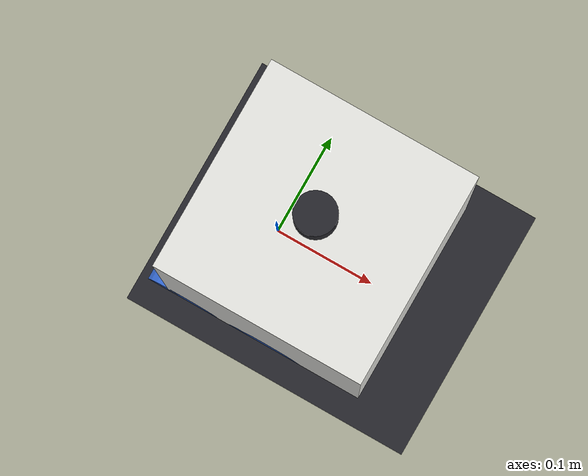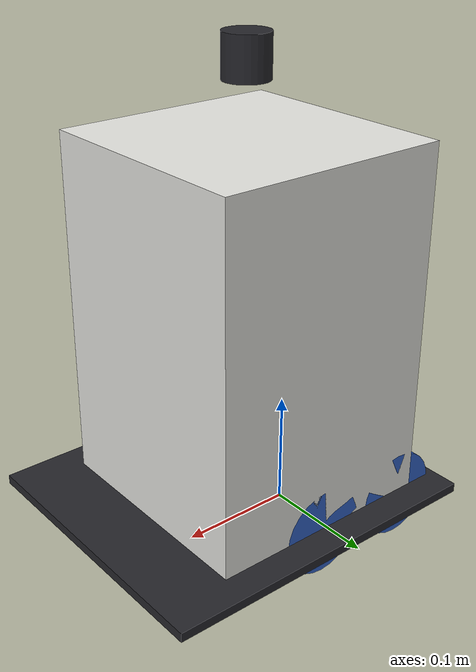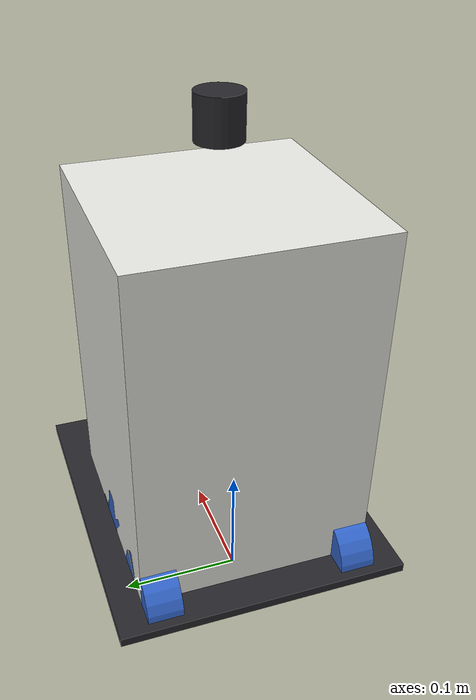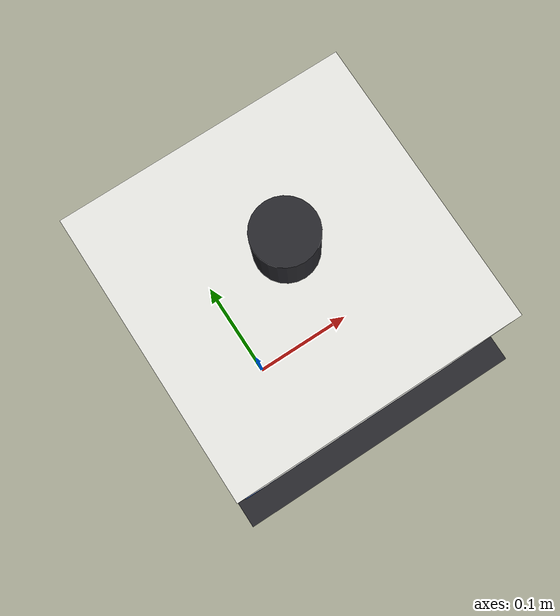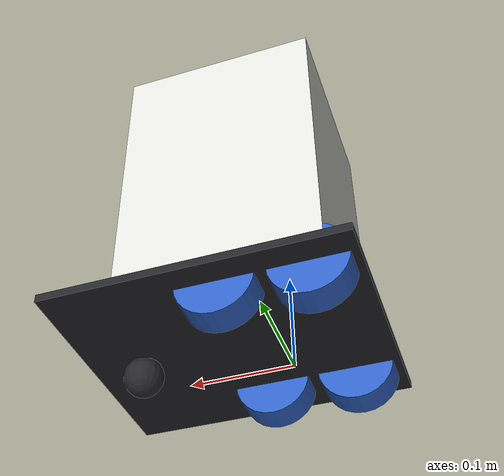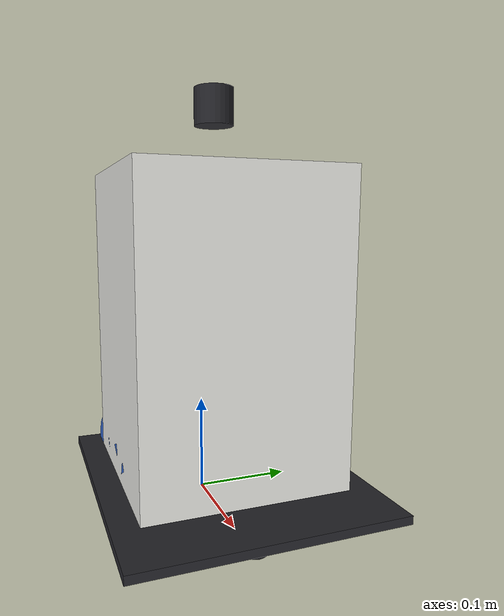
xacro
<?xml version="1.0"?>
<robot xmlns:xacro="http://www.ros.org/wiki/xacro" name="omnibot">

  <!-- ===================================================== vermessene Masse -->
  <xacro:property name="wheel_radius" value="0.0375"/>
  <xacro:property name="wheel_width"  value="0.030"/>
  <xacro:property name="track"        value="0.170"/>   <!-- Radmitte zu Radmitte -->
  <xacro:property name="wheelbase"    value="0.085"/>   <!-- Vorder- zu Hinterachse -->

  <xacro:property name="plate_length" value="0.290"/>
  <xacro:property name="plate_width"  value="0.250"/>
  <xacro:property name="plate_thick"  value="0.008"/>

  <!-- Kanten der Grundplatte relativ zu base_link -->
  <xacro:property name="plate_front"  value="0.2025"/>
  <xacro:property name="plate_rear"   value="-0.0875"/>
  <xacro:property name="plate_x"      value="${(plate_front + plate_rear) / 2}"/>

  <!-- LIDAR: Scanebene 0,40 m ueber dem Boden, direkt ueber der Vorderachse -->
  <xacro:property name="laser_x"      value="0.0425"/>
  <xacro:property name="laser_z"      value="${0.40 - wheel_radius}"/>

  <!-- ============================================== geschaetzt, nicht gemessen -->
  <!-- Die Schwenkrolle sitzt vorn auf der Mittellinie. Ihre Laengsposition ist
       nie vermessen worden; sie hat keinen Einfluss auf Kinematik oder Costmap
       und dient hier nur der Anschauung. -->
  <xacro:property name="caster_x"     value="0.150"/>
  <xacro:property name="caster_radius" value="0.020"/>
  <!-- Aufbau (Rumpf, Kopfkuppel) grob, nur zur Orientierung in RViz2. -->
  <xacro:property name="body_height"  value="0.30"/>

  <material name="omnibot_white"><color rgba="0.90 0.90 0.88 1.0"/></material>
  <material name="omnibot_dark"> <color rgba="0.15 0.15 0.17 1.0"/></material>
  <material name="omnibot_blue"> <color rgba="0.20 0.40 0.80 1.0"/></material>

  <xacro:macro name="dummy_inertial" params="mass">
    <inertial>
      <mass value="${mass}"/>
      <inertia ixx="0.001" ixy="0.0" ixz="0.0" iyy="0.001" iyz="0.0" izz="0.001"/>
    </inertial>
  </xacro:macro>

  <!-- ============================================================== Rahmen -->

  <link name="base_footprint"/>

  <joint name="base_footprint_joint" type="fixed">
    <parent link="base_footprint"/>
    <child link="base_link"/>
    <origin xyz="0 0 ${wheel_radius}" rpy="0 0 0"/>
  </joint>

  <link name="base_link">
    <visual>
      <origin xyz="${plate_x} 0 0" rpy="0 0 0"/>
      <geometry><box size="${plate_length} ${plate_width} ${plate_thick}"/></geometry>
      <material name="omnibot_dark"/>
    </visual>
    <collision>
      <origin xyz="${plate_x} 0 0" rpy="0 0 0"/>
      <geometry><box size="${plate_length} ${plate_width} ${plate_thick}"/></geometry>
    </collision>
    <xacro:dummy_inertial mass="2.0"/>
  </link>

  <!-- Aufbau: grob, damit man in RViz2 sieht, wo vorne ist -->
  <link name="body_link">
    <visual>
      <origin xyz="0 0 ${body_height / 2}" rpy="0 0 0"/>
      <geometry><box size="0.20 0.20 ${body_height}"/></geometry>
      <material name="omnibot_white"/>
    </visual>
  </link>
  <joint name="body_joint" type="fixed">
    <parent link="base_link"/>
    <child link="body_link"/>
    <origin xyz="${laser_x} 0 ${plate_thick / 2}" rpy="0 0 0"/>
  </joint>

  <!-- =============================================================== Raeder -->
  <xacro:macro name="wheel" params="name x y">
    <link name="${name}">
      <visual>
        <origin xyz="0 0 0" rpy="${pi/2} 0 0"/>
        <geometry><cylinder radius="${wheel_radius}" length="${wheel_width}"/></geometry>
        <material name="omnibot_blue"/>
      </visual>
      <collision>
        <origin xyz="0 0 0" rpy="${pi/2} 0 0"/>
        <geometry><cylinder radius="${wheel_radius}" length="${wheel_width}"/></geometry>
      </collision>
      <xacro:dummy_inertial mass="0.2"/>
    </link>
    <joint name="${name}_joint" type="fixed">
      <parent link="base_link"/>
      <child link="${name}"/>
      <origin xyz="${x} ${y} 0" rpy="0 0 0"/>
    </joint>
  </xacro:macro>

  <xacro:wheel name="wheel_front_left"  x="${ wheelbase / 2}" y="${ track / 2}"/>
  <xacro:wheel name="wheel_front_right" x="${ wheelbase / 2}" y="${-track / 2}"/>
  <xacro:wheel name="wheel_rear_left"   x="${-wheelbase / 2}" y="${ track / 2}"/>
  <xacro:wheel name="wheel_rear_right"  x="${-wheelbase / 2}" y="${-track / 2}"/>

  <!-- ======================================================== Schwenkrolle -->
  <link name="caster">
    <visual>
      <geometry><sphere radius="${caster_radius}"/></geometry>
      <material name="omnibot_dark"/>
    </visual>
    <xacro:dummy_inertial mass="0.05"/>
  </link>
  <joint name="caster_joint" type="fixed">
    <parent link="base_link"/>
    <child link="caster"/>
    <origin xyz="${caster_x} 0 ${caster_radius - wheel_radius}" rpy="0 0 0"/>
  </joint>

  <!-- =============================================================== LIDAR -->
  <link name="base_laser">
    <visual>
      <geometry><cylinder radius="0.019" length="0.035"/></geometry>
      <material name="omnibot_dark"/>
    </visual>
    <xacro:dummy_inertial mass="0.1"/>
  </link>
  <joint name="base_laser_joint" type="fixed">
    <parent link="base_link"/>
    <child link="base_laser"/>
    <origin xyz="${laser_x} 0 ${laser_z}" rpy="0 0 0"/>
  </joint>

</robot>
